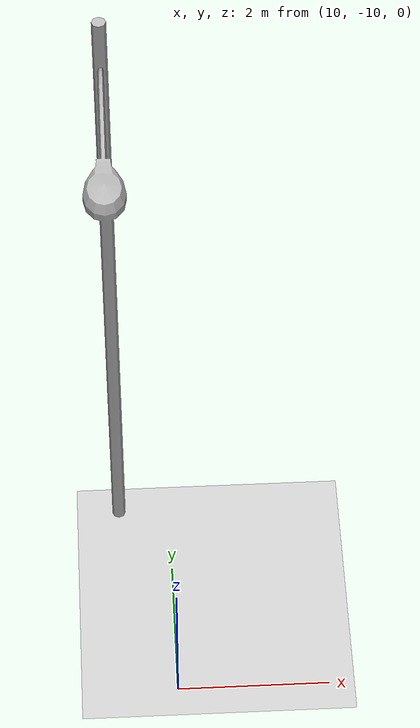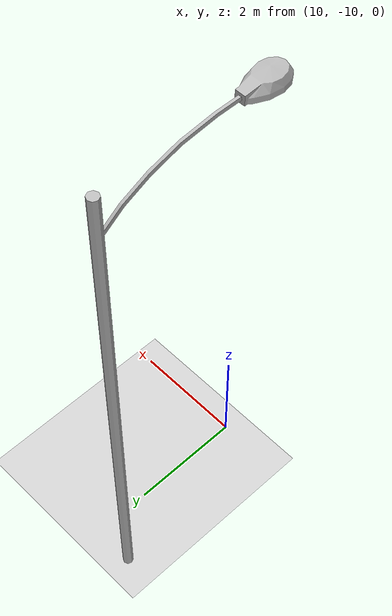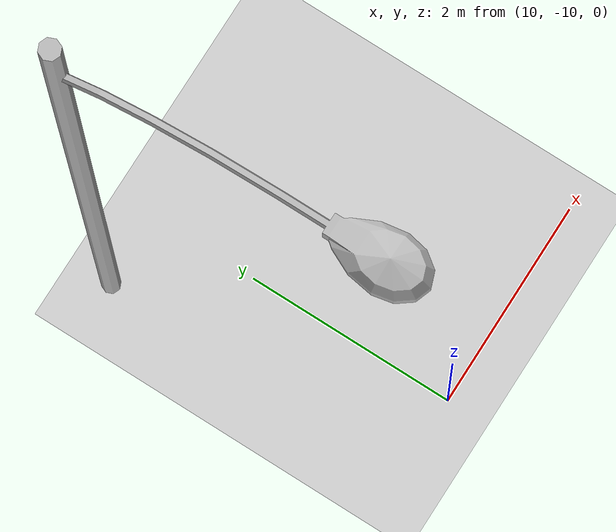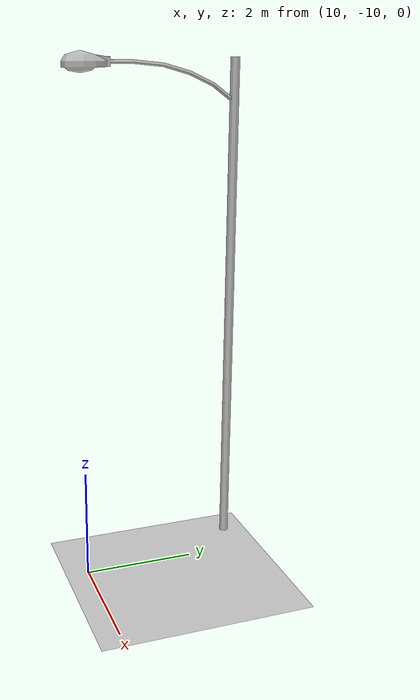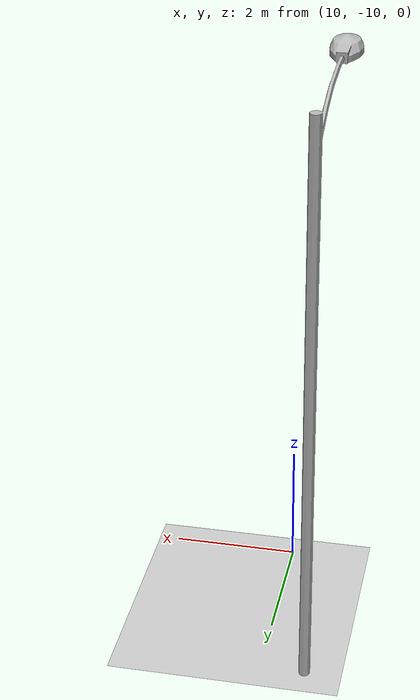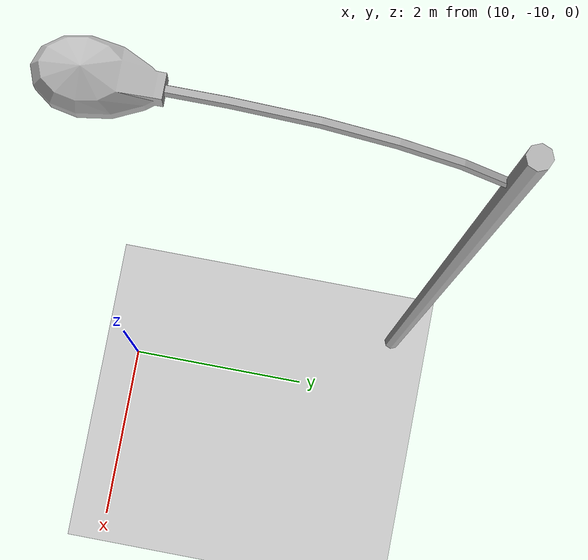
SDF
<sdf version="1.6">
 <world name="default">
  <model name="ground_plane">
   <pose>-10.2 24.7 0 0 -0 0</pose>
   <static>1</static>
   <link name="link">
    <collision name="collision">
     <geometry><plane><normal>0 0 1</normal><size>100 100</size></plane></geometry>
     <surface><friction><ode><mu>100</mu><mu2>50</mu2></ode></friction></surface>
    </collision>
    <visual name="visual">
     <cast_shadows>0</cast_shadows>
     <geometry><plane><normal>0 0 1</normal><size>100 100</size></plane></geometry>
     <material>
      <script><uri>file://media/materials/scripts/gazebo.material</uri><name>Gazebo/Grey</name></script>
     </material>
    </visual>
   </link>
  </model>
  <model name="Lamp Post_3">
   <static>1</static>
   <link name="link">
    <collision name="collision">
     <geometry><mesh><uri>model://lamp_post/meshes/lamp_post.dae</uri><scale>3 3 3</scale></mesh></geometry>
    </collision>
    <visual name="visual">
     <geometry><mesh><uri>model://lamp_post/meshes/lamp_post.dae</uri><scale>3 3 3</scale></mesh></geometry>
    </visual>
   </link>
   <pose>9.3 -7 0 0 -0 0</pose>
  </model>
 </world>
</sdf>
